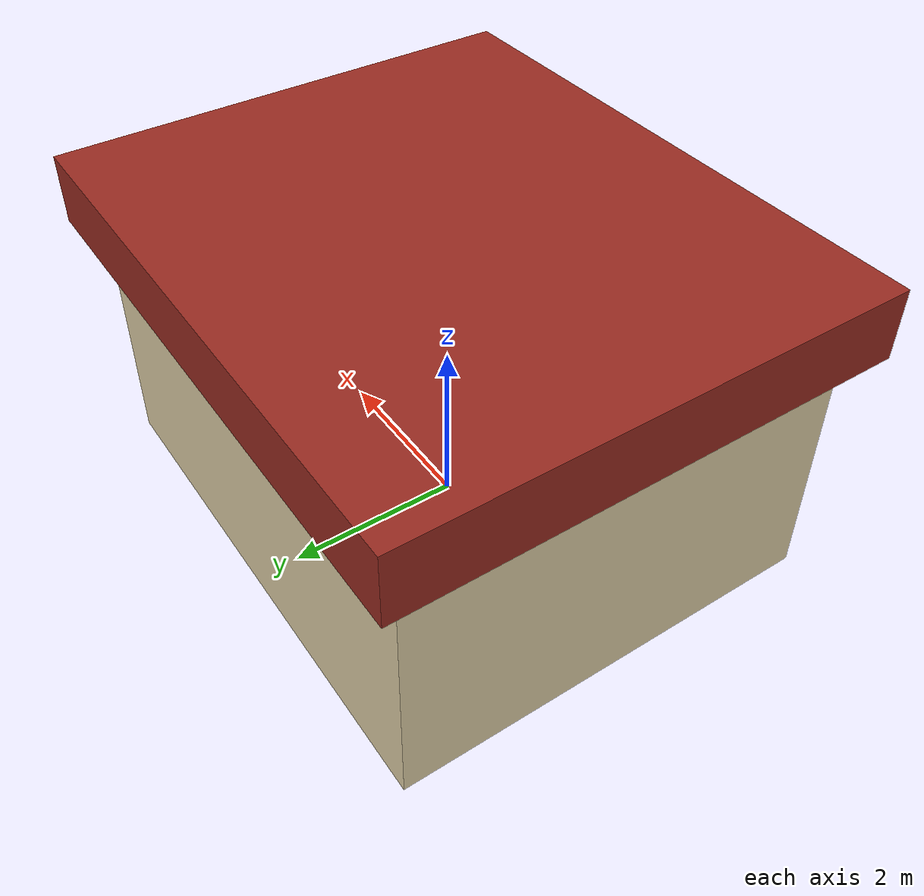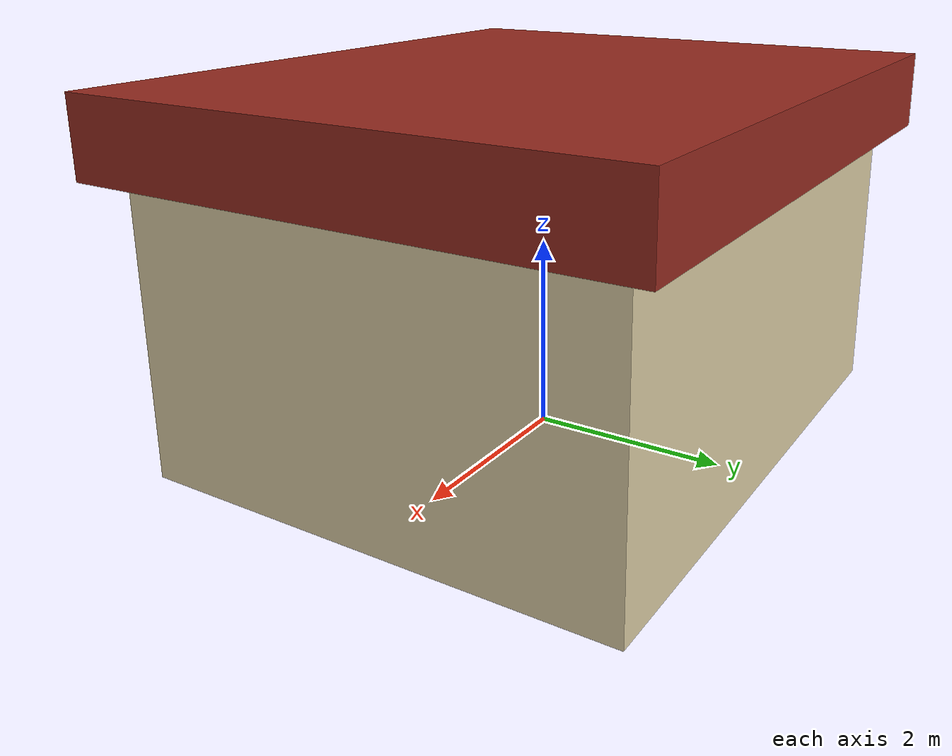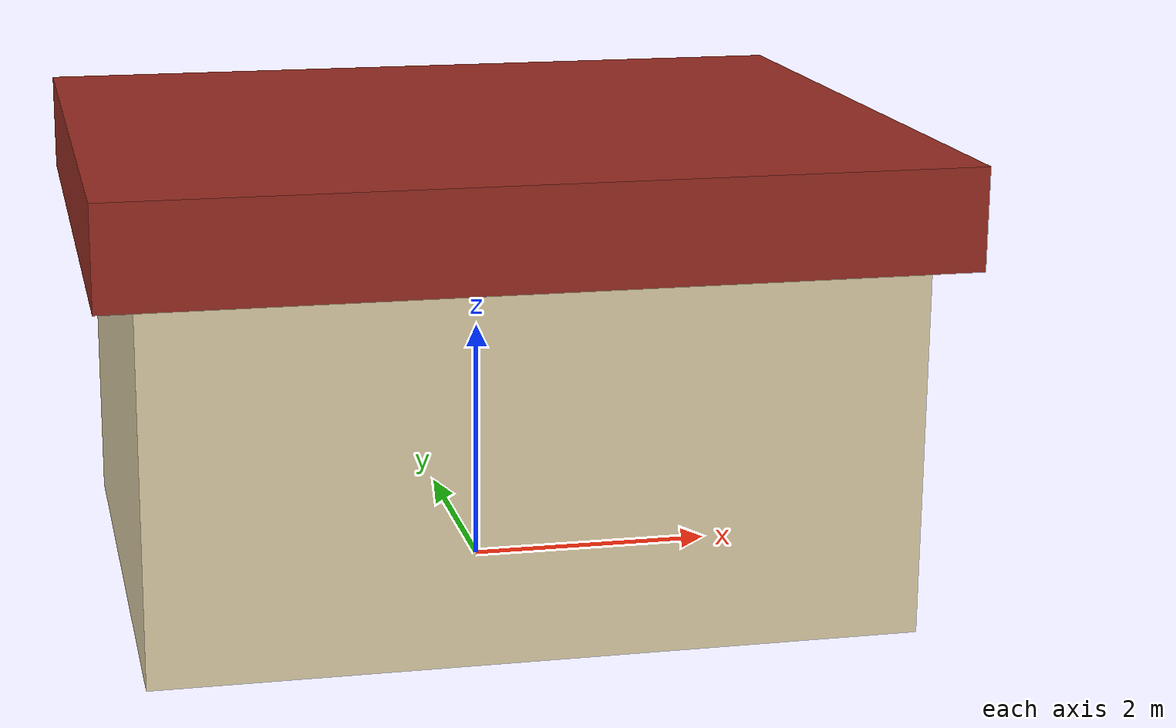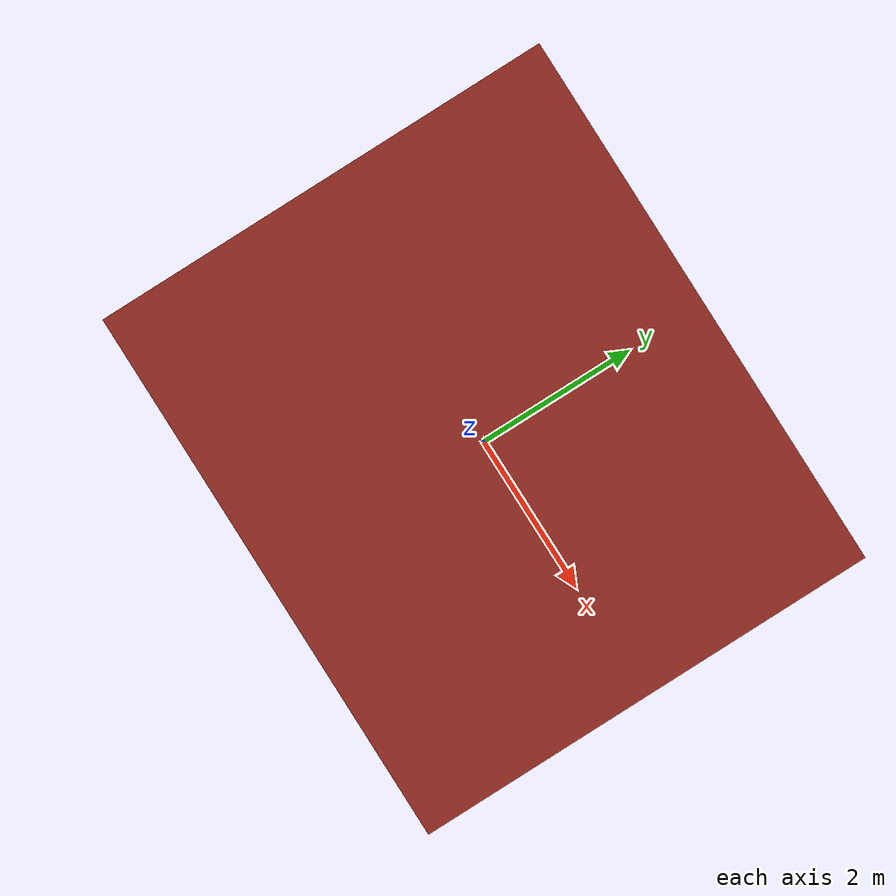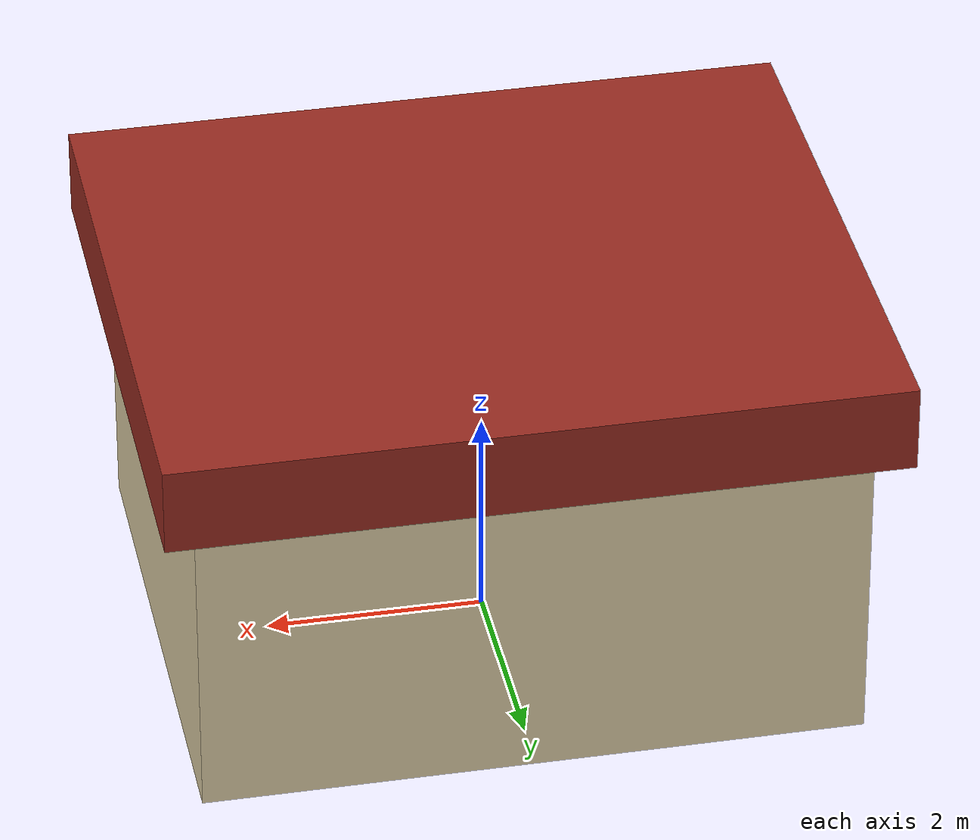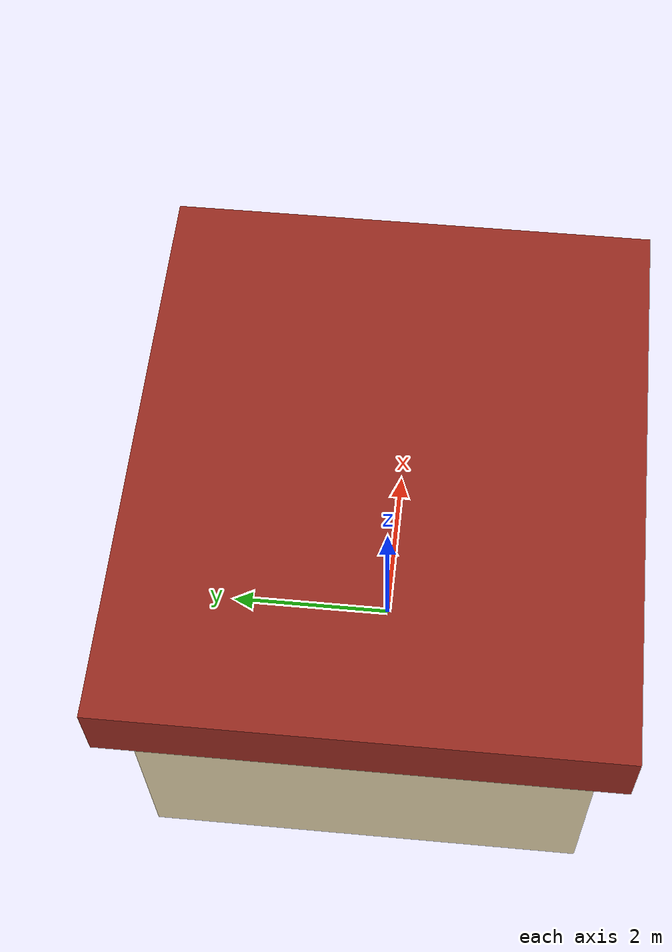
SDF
<?xml version="1.0" ?>
<!-- Primitive house: tan box walls (6x5x3) + dark-red roof slab. Static
     scenery placed OUTSIDE the field perimeter. -->
<sdf version="1.9">
  <model name="house">
    <static>true</static>
    <link name="link">
      <visual name="walls">
        <pose>0 0 1.5 0 0 0</pose>
        <geometry>
          <box><size>6 5 3</size></box>
        </geometry>
        <material>
          <ambient>0.78 0.72 0.58 1</ambient>
          <diffuse>0.88 0.82 0.66 1</diffuse>
        </material>
      </visual>
      <visual name="roof">
        <pose>0 0 3.35 0 0 0</pose>
        <geometry>
          <box><size>6.6 5.6 0.8</size></box>
        </geometry>
        <material>
          <ambient>0.45 0.13 0.10 1</ambient>
          <diffuse>0.60 0.17 0.13 1</diffuse>
        </material>
      </visual>
      <collision name="col">
        <pose>0 0 1.75 0 0 0</pose>
        <geometry>
          <box><size>6.6 5.6 3.5</size></box>
        </geometry>
      </collision>
    </link>
  </model>
</sdf>
